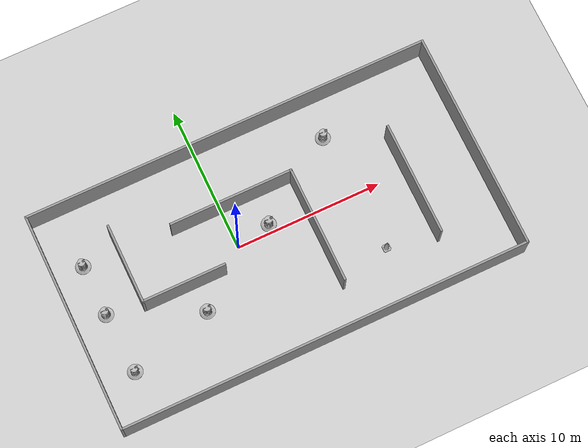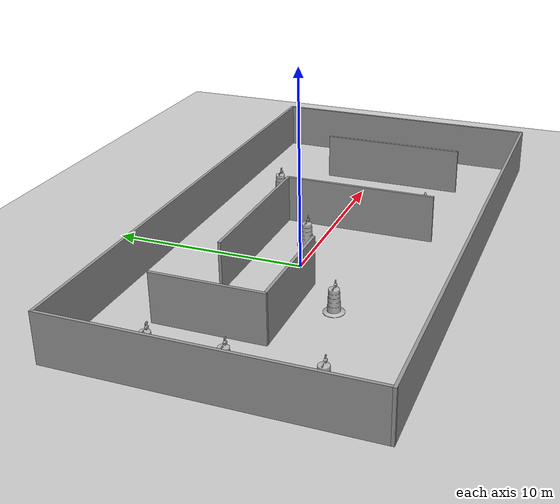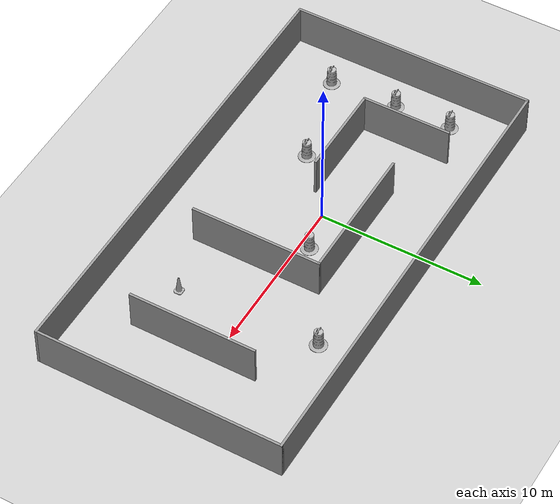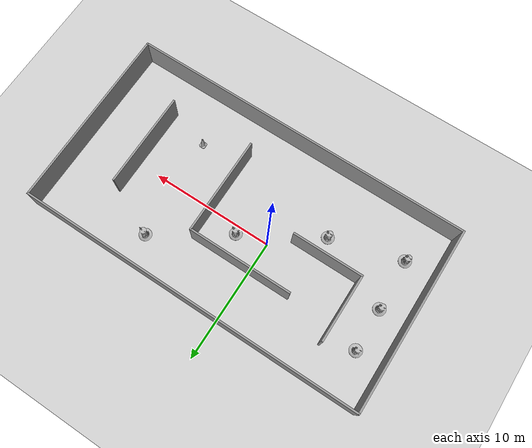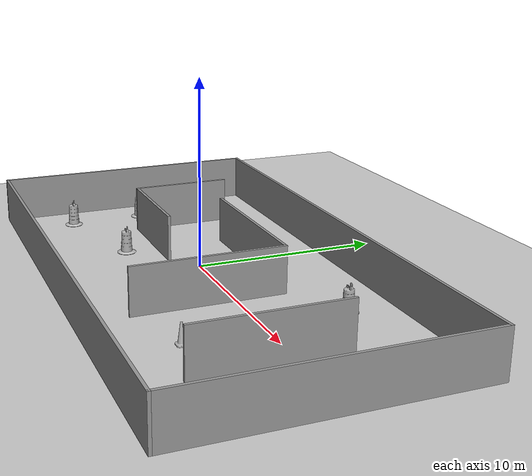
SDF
<sdf version="1.7">
 <world name="default">
  <light name="sun" type="directional">
   <pose>0 0 10 0 -0 0</pose>
   <diffuse>0.8 0.8 0.8 1</diffuse>
   <specular>0.2 0.2 0.2 1</specular>
   <attenuation>
    <range>1000</range>
    <constant>0.9</constant>
    <linear>0.01</linear>
    <quadratic>0.001</quadratic>
   </attenuation>
   <direction>-0.5 0.1 -0.9</direction>
   <spot><inner_angle>0</inner_angle><outer_angle>0</outer_angle><falloff>0</falloff></spot>
  </light>
  <model name="ground_plane">
   <static>1</static>
   <link name="link">
    <collision name="collision">
     <geometry><plane><normal>0 0 1</normal><size>100 100</size></plane></geometry>
     <surface>
      <contact><collide_bitmask>65535</collide_bitmask></contact>
      <friction><ode><mu>100</mu><mu2>50</mu2></ode></friction>
     </surface>
    </collision>
    <visual name="visual">
     <cast_shadows>0</cast_shadows>
     <geometry><plane><normal>0 0 1</normal><size>100 100</size></plane></geometry>
     <material>
      <script><uri>file://media/materials/scripts/gazebo.material</uri><name>Gazebo/Grey</name></script>
     </material>
    </visual>
   </link>
  </model>
  <gravity>0 0 -9.8</gravity>
  <magnetic_field>6e-06 2.3e-05 -4.2e-05</magnetic_field>
  <atmosphere type="adiabatic"/>
  <physics type="ode">
   <max_step_size>0.001</max_step_size>
   <real_time_factor>1</real_time_factor>
   <real_time_update_rate>1000</real_time_update_rate>
  </physics>
  <scene><ambient>0.4 0.4 0.4 1</ambient><background>0.7 0.7 0.7 1</background><shadows>1</shadows></scene>
  <audio><device>default</device></audio>
  <spherical_coordinates>
   <surface_model>EARTH_WGS84</surface_model>
   <latitude_deg>0</latitude_deg>
   <longitude_deg>0</longitude_deg>
   <elevation>0</elevation>
   <heading_deg>0</heading_deg>
  </spherical_coordinates>
  <model name="maze">
   <pose>2.4245 -0.552755 0 0 -0 0</pose>
   <link name="Wall_25">
    <collision name="Wall_25_Collision">
     <geometry><box><size>28 0.15 2.5</size></box></geometry>
     <pose>0 0 1.25 0 -0 0</pose>
    </collision>
    <visual name="Wall_25_Visual">
     <pose>0 0 1.25 0 -0 0</pose>
     <geometry><box><size>28 0.15 2.5</size></box></geometry>
     <material>
      <script><uri>file://media/materials/scripts/gazebo.material</uri><name>Gazebo/Grey</name></script>
      <ambient>1 1 1 1</ambient>
     </material>
     <meta><layer>0</layer></meta>
    </visual>
    <pose>0 7.425 0 0 -0 0</pose>
   </link>
   <link name="Wall_26">
    <collision name="Wall_26_Collision">
     <geometry><box><size>15 0.15 2.5</size></box></geometry>
     <pose>0 0 1.25 0 -0 0</pose>
    </collision>
    <visual name="Wall_26_Visual">
     <pose>0 0 1.25 0 -0 0</pose>
     <geometry><box><size>15 0.15 2.5</size></box></geometry>
     <material>
      <script><uri>file://media/materials/scripts/gazebo.material</uri><name>Gazebo/Grey</name></script>
      <ambient>1 1 1 1</ambient>
     </material>
     <meta><layer>0</layer></meta>
    </visual>
    <pose>13.925 -0 0 0 -0 -1.5708</pose>
   </link>
   <link name="Wall_27">
    <collision name="Wall_27_Collision">
     <geometry><box><size>28 0.15 2.5</size></box></geometry>
     <pose>0 0 1.25 0 -0 0</pose>
    </collision>
    <visual name="Wall_27_Visual">
     <pose>0 0 1.25 0 -0 0</pose>
     <geometry><box><size>28 0.15 2.5</size></box></geometry>
     <material>
      <script><uri>file://media/materials/scripts/gazebo.material</uri><name>Gazebo/Grey</name></script>
      <ambient>1 1 1 1</ambient>
     </material>
     <meta><layer>0</layer></meta>
    </visual>
    <pose>0 -7.425 0 0 -0 3.14159</pose>
   </link>
   <link name="Wall_28">
    <collision name="Wall_28_Collision">
     <geometry><box><size>15 0.15 2.5</size></box></geometry>
     <pose>0 0 1.25 0 -0 0</pose>
    </collision>
    <visual name="Wall_28_Visual">
     <pose>0 0 1.25 0 -0 0</pose>
     <geometry><box><size>15 0.15 2.5</size></box></geometry>
     <material>
      <script><uri>file://media/materials/scripts/gazebo.material</uri><name>Gazebo/Grey</name></script>
      <ambient>1 1 1 1</ambient>
     </material>
     <meta><layer>0</layer></meta>
    </visual>
    <pose>-13.925 -0 0 0 -0 1.5708</pose>
   </link>
   <link name="Wall_30">
    <collision name="Wall_30_Collision">
     <geometry><box><size>5.5 0.15 2.5</size></box></geometry>
     <pose>0 0 1.25 0 -0 0</pose>
    </collision>
    <visual name="Wall_30_Visual">
     <pose>0 0 1.25 0 -0 0</pose>
     <geometry><box><size>5.5 0.15 2.5</size></box></geometry>
     <material>
      <script><uri>file://media/materials/scripts/gazebo.material</uri><name>Gazebo/Grey</name></script>
      <ambient>1 1 1 1</ambient>
     </material>
     <meta><layer>0</layer></meta>
    </visual>
    <pose>-9.47997 2.01682 0 0 -0 -1.5708</pose>
   </link>
   <link name="Wall_31">
    <collision name="Wall_31_Collision">
     <geometry><box><size>5.75 0.15 2.5</size></box></geometry>
     <pose>0 0 1.25 0 -0 0</pose>
    </collision>
    <visual name="Wall_31_Visual">
     <pose>0 0 1.25 0 -0 0</pose>
     <geometry><box><size>5.75 0.15 2.5</size></box></geometry>
     <material>
      <script><uri>file://media/materials/scripts/gazebo.material</uri><name>Gazebo/Grey</name></script>
      <ambient>1 1 1 1</ambient>
     </material>
     <meta><layer>0</layer></meta>
    </visual>
    <pose>-6.67997 -0.658179 0 0 -0 0</pose>
   </link>
   <link name="Wall_33">
    <collision name="Wall_33_Collision">
     <geometry><box><size>8.5 0.15 2.5</size></box></geometry>
     <pose>0 0 1.25 0 -0 0</pose>
    </collision>
    <visual name="Wall_33_Visual">
     <pose>0 0 1.25 0 -0 0</pose>
     <geometry><box><size>8.5 0.15 2.5</size></box></geometry>
     <material>
      <script><uri>file://media/materials/scripts/gazebo.material</uri><name>Gazebo/Grey</name></script>
      <ambient>1 1 1 1</ambient>
     </material>
     <meta><layer>0</layer></meta>
    </visual>
    <pose>-1.67388 3.13961 0 0 -0 0</pose>
   </link>
   <link name="Wall_34">
    <collision name="Wall_34_Collision">
     <geometry><box><size>8 0.15 2.5</size></box></geometry>
     <pose>0 0 1.25 0 -0 0</pose>
    </collision>
    <visual name="Wall_34_Visual">
     <pose>0 0 1.25 0 -0 0</pose>
     <geometry><box><size>8 0.15 2.5</size></box></geometry>
     <material>
      <script><uri>file://media/materials/scripts/gazebo.material</uri><name>Gazebo/Grey</name></script>
      <ambient>1 1 1 1</ambient>
     </material>
     <meta><layer>0</layer></meta>
    </visual>
    <pose>2.50112 -0.785393 0 0 -0 -1.5708</pose>
   </link>
   <link name="Wall_36">
    <collision name="Wall_36_Collision">
     <geometry><box><size>7.75 0.15 2.5</size></box></geometry>
     <pose>0 0 1.25 0 -0 0</pose>
    </collision>
    <visual name="Wall_36_Visual">
     <pose>0 0 1.25 0 -0 0</pose>
     <geometry><box><size>7.75 0.15 2.5</size></box></geometry>
     <material>
      <script><uri>file://media/materials/scripts/gazebo.material</uri><name>Gazebo/Grey</name></script>
      <ambient>1 1 1 1</ambient>
     </material>
     <meta><layer>0</layer></meta>
    </visual>
    <pose>9.34834 -0.660393 0 0 -0 -1.5708</pose>
   </link>
   <static>1</static>
  </model>
  <model name="Construction Barrel">
   <link name="link">
    <inertial>
     <pose>0 0 0.4 0 -0 0</pose>
     <mass>500</mass>
     <inertia><ixx>51.2096</ixx><iyy>51.2096</iyy><izz>25</izz><ixy>0</ixy><ixz>0</ixz><iyz>0</iyz></inertia>
    </inertial>
    <collision name="collision">
     <geometry><mesh><uri>model://construction_barrel/meshes/construction_barrel.dae</uri></mesh></geometry>
    </collision>
    <visual name="visual">
     <geometry><mesh><uri>model://construction_barrel/meshes/construction_barrel.dae</uri></mesh></geometry>
    </visual>
   </link>
   <pose>-9.5009 3.07003 -0 1e-06 -1e-06 -1.2e-05</pose>
  </model>
  <model name="Construction Barrel_0">
   <link name="link">
    <inertial>
     <pose>0 0 0.4 0 -0 0</pose>
     <mass>500</mass>
     <inertia><ixx>51.2096</ixx><iyy>51.2096</iyy><izz>25</izz><ixy>0</ixy><ixz>0</ixz><iyz>0</iyz></inertia>
    </inertial>
    <collision name="collision">
     <geometry><mesh><uri>model://construction_barrel/meshes/construction_barrel.dae</uri></mesh></geometry>
    </collision>
    <visual name="visual">
     <geometry><mesh><uri>model://construction_barrel/meshes/construction_barrel.dae</uri></mesh></geometry>
    </visual>
   </link>
   <pose>-9.44155 -0.420542 -1e-06 0 5e-06 -1e-05</pose>
  </model>
  <model name="Construction Barrel_1">
   <link name="link">
    <inertial>
     <pose>0 0 0.4 0 -0 0</pose>
     <mass>500</mass>
     <inertia><ixx>51.2096</ixx><iyy>51.2096</iyy><izz>25</izz><ixy>0</ixy><ixz>0</ixz><iyz>0</iyz></inertia>
    </inertial>
    <collision name="collision">
     <geometry><mesh><uri>model://construction_barrel/meshes/construction_barrel.dae</uri></mesh></geometry>
    </collision>
    <visual name="visual">
     <geometry><mesh><uri>model://construction_barrel/meshes/construction_barrel.dae</uri></mesh></geometry>
    </visual>
   </link>
   <pose>-9.26284 -4.56296 -2e-06 -0 7e-06 -8e-06</pose>
  </model>
  <model name="Construction Barrel_2">
   <link name="link">
    <inertial>
     <pose>0 0 0.4 0 -0 0</pose>
     <mass>500</mass>
     <inertia><ixx>51.2096</ixx><iyy>51.2096</iyy><izz>25</izz><ixy>0</ixy><ixz>0</ixz><iyz>0</iyz></inertia>
    </inertial>
    <collision name="collision">
     <geometry><mesh><uri>model://construction_barrel/meshes/construction_barrel.dae</uri></mesh></geometry>
    </collision>
    <visual name="visual">
     <geometry><mesh><uri>model://construction_barrel/meshes/construction_barrel.dae</uri></mesh></geometry>
    </visual>
   </link>
   <pose>-3.53123 -2.96763 -1e-06 3e-06 1e-05 -7e-06</pose>
  </model>
  <model name="Construction Cone">
   <link name="link">
    <collision name="collision">
     <geometry>
      <mesh><scale>10 10 10</scale><uri>model://construction_cone/meshes/construction_cone.dae</uri></mesh>
     </geometry>
    </collision>
    <visual name="visual">
     <geometry>
      <mesh><scale>10 10 10</scale><uri>model://construction_cone/meshes/construction_cone.dae</uri></mesh>
     </geometry>
    </visual>
    <inertial>
     <inertia><ixx>1</ixx><ixy>0</ixy><ixz>0</ixz><iyy>1</iyy><iyz>0</iyz><izz>1</izz></inertia>
     <mass>1</mass>
    </inertial>
   </link>
   <pose>8.57048 -4.05562 -4e-06 4e-06 -1e-06 0</pose>
  </model>
  <model name="Construction Barrel_3">
   <link name="link">
    <inertial>
     <pose>0 0 0.4 0 -0 0</pose>
     <mass>500</mass>
     <inertia><ixx>51.2096</ixx><iyy>51.2096</iyy><izz>25</izz><ixy>0</ixy><ixz>0</ixz><iyz>0</iyz></inertia>
    </inertial>
    <collision name="collision">
     <geometry><mesh><uri>model://construction_barrel/meshes/construction_barrel.dae</uri></mesh></geometry>
    </collision>
    <visual name="visual">
     <geometry><mesh><uri>model://construction_barrel/meshes/construction_barrel.dae</uri></mesh></geometry>
    </visual>
   </link>
   <pose>8.08055 4.36305 0 0 0 -3e-06</pose>
  </model>
  <model name="Construction Barrel_4">
   <link name="link">
    <inertial>
     <pose>0 0 0.4 0 -0 0</pose>
     <mass>500</mass>
     <inertia><ixx>51.2096</ixx><iyy>51.2096</iyy><izz>25</izz><ixy>0</ixy><ixz>0</ixz><iyz>0</iyz></inertia>
    </inertial>
    <collision name="collision">
     <geometry><mesh><uri>model://construction_barrel/meshes/construction_barrel.dae</uri></mesh></geometry>
    </collision>
    <visual name="visual">
     <geometry><mesh><uri>model://construction_barrel/meshes/construction_barrel.dae</uri></mesh></geometry>
    </visual>
   </link>
   <pose>2.41873 0.581569 -1e-06 3e-06 -2e-06 -2e-06</pose>
  </model>
 </world>
</sdf>
